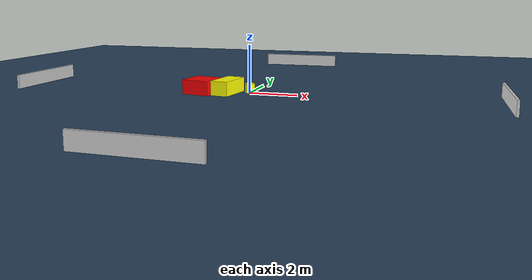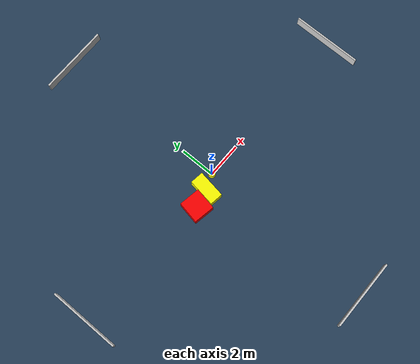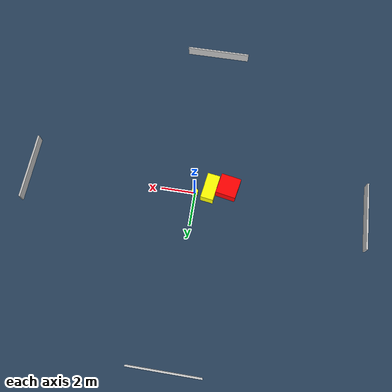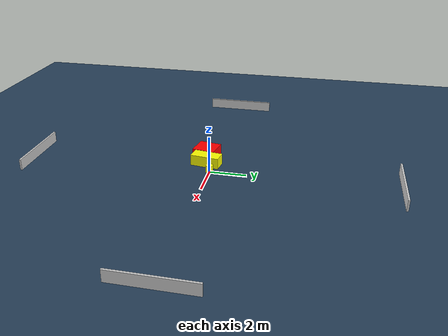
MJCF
<?xml version="1.0" ?>
<mujoco model="generated_environment">
  <option timestep="0.01" integrator="RK4" cone="elliptic"/>
  <default>
    <geom density="1"/>
  </default>
  <asset>
    <texture builtin="gradient" height="3072" name="skybox" rgb1="0.3 0.5 0.7" rgb2="0 0 0" type="skybox" width="512"/>
    <texture builtin="checker" height="300" name="groundplane" rgb1="0.2 0.3 0.4" rgb2="0.1 0.2 0.3" type="2d" width="300"/>
    <material name="groundplane" reflectance="0.2" texrepeat="5 5" texture="groundplane"/>
  </asset>
  <worldbody>
    <light dir="0 0 -1" directional="true" pos="0 0 1.5"/>
    <geom condim="3" friction="0.5 0.005 0.001" material="groundplane" name="floor" pos="0 0 0" size="0 0 0.05" type="plane"/>
    <body name="walls">
      <geom name="wall_1" condim="4" pos="-10.0 0.0 0.3" rgba="0.800000011920929 0.800000011920929 0.800000011920929 1.0" size="0.05 2.0 0.3" type="box"/>
      <geom name="wall_2" condim="4" pos="10.0 0.0 0.3" rgba="0.800000011920929 0.800000011920929 0.800000011920929 1.0" size="0.05 2.0 0.3" type="box"/>
      <geom name="wall_3" condim="4" pos="0.0 -10.0 0.3" rgba="0.800000011920929 0.800000011920929 0.800000011920929 1.0" size="2.0 0.05 0.3" type="box"/>
      <geom name="wall_4" condim="4" pos="0.0 10.0 0.3" rgba="0.800000011920929 0.800000011920929 0.800000011920929 1.0" size="2.0 0.05 0.3" type="box"/>
    </body>
    <body name="robot">
      <joint name="joint_x" type="slide" pos="0 0 0" axis="1 0 0"/>
      <joint name="joint_y" type="slide" pos="0 0 0" axis="0 1 0"/>
      <geom name="robot" type="cylinder" pos="0.0 0.0 0.2" size="0.2 0.2 0.0" mass="5.0" friction="1.0 0.005 0.0001" condim="4" rgba="1.0 1.0 0.0 1.0"/>
    </body>
    <body name="obstacle_1_movable">
      <geom name="obstacle_1_movable" condim="4" pos="-0.8721432403640554 -0.3559034714898107 0.3" euler="0 0 351.65866845884267" friction="0.0 0.005 0.001" rgba="1.0 1.0 0.0 1.0" size="0.37598376063735284 0.7867465283948303 0.3" type="box" mass="0.1"/>
      <joint type="free"/>
    </body>
    <body name="obstacle_2_static">
      <geom name="obstacle_2_static" condim="4" pos="-1.9077687782621213 -0.5635109054999684 0.3" euler="0 0 349.6648604423908" friction="0.0 0.005 0.001" rgba="1.0 0.0 0.0 1.0" size="0.5969952774449299 0.6229259234301693 0.3" type="box"/>
    </body>
  </worldbody>
  <actuator>
    <motor name="actuator_x" joint="joint_x" gear="1" ctrlrange="-1 1"/>
    <motor name="actuator_y" joint="joint_y" gear="1" ctrlrange="-1 1"/>
  </actuator>
</mujoco>
